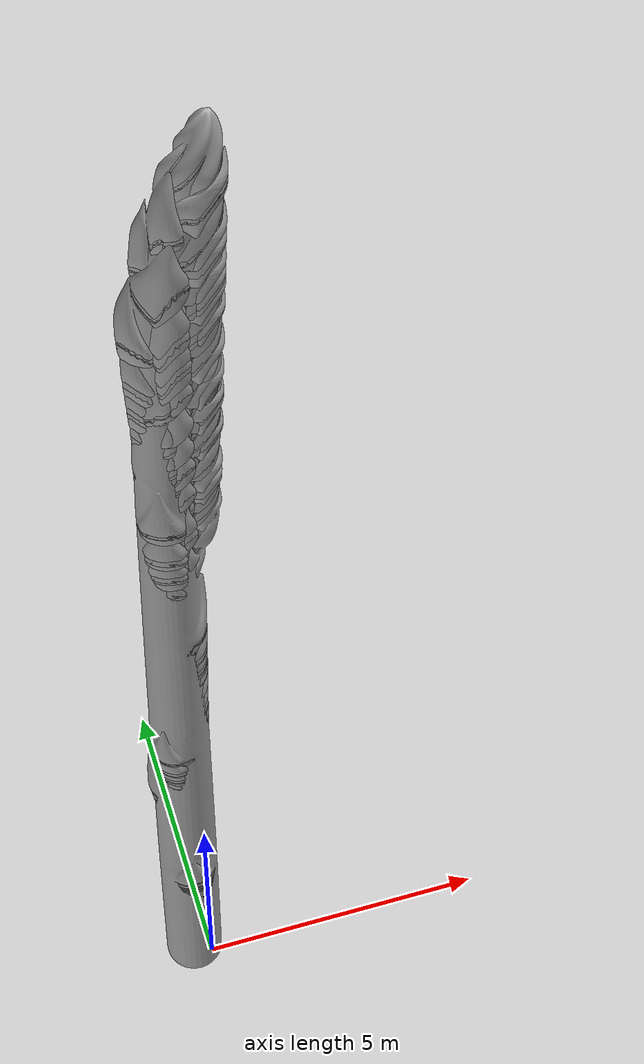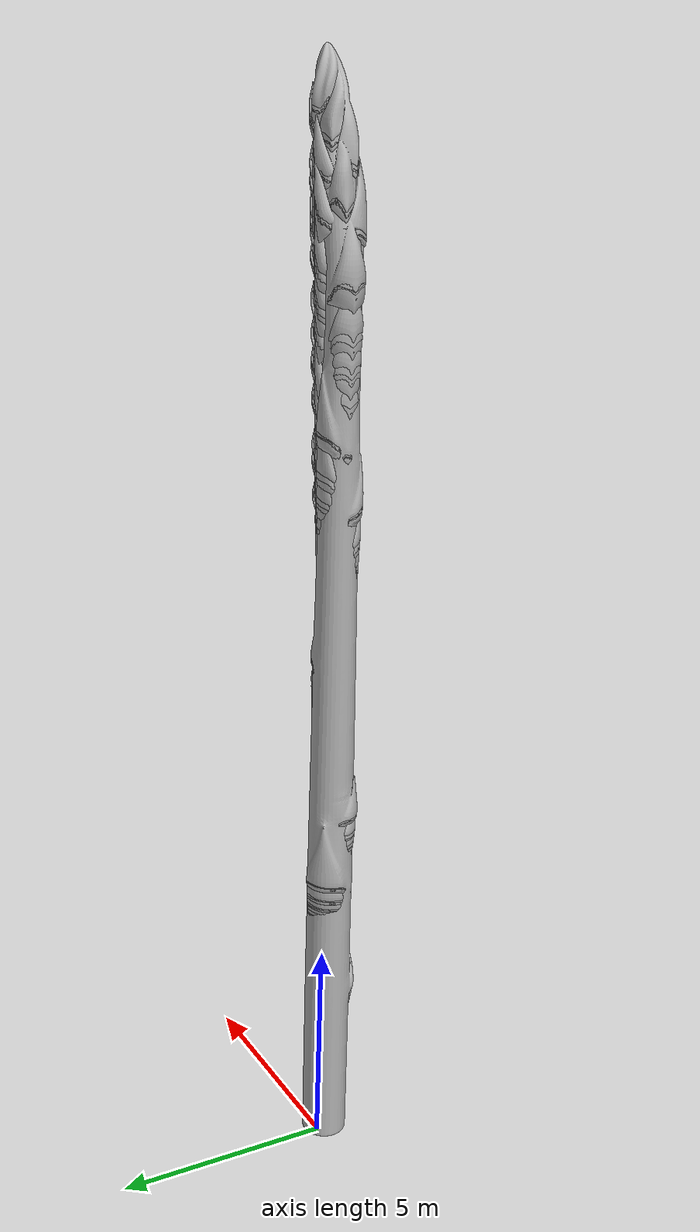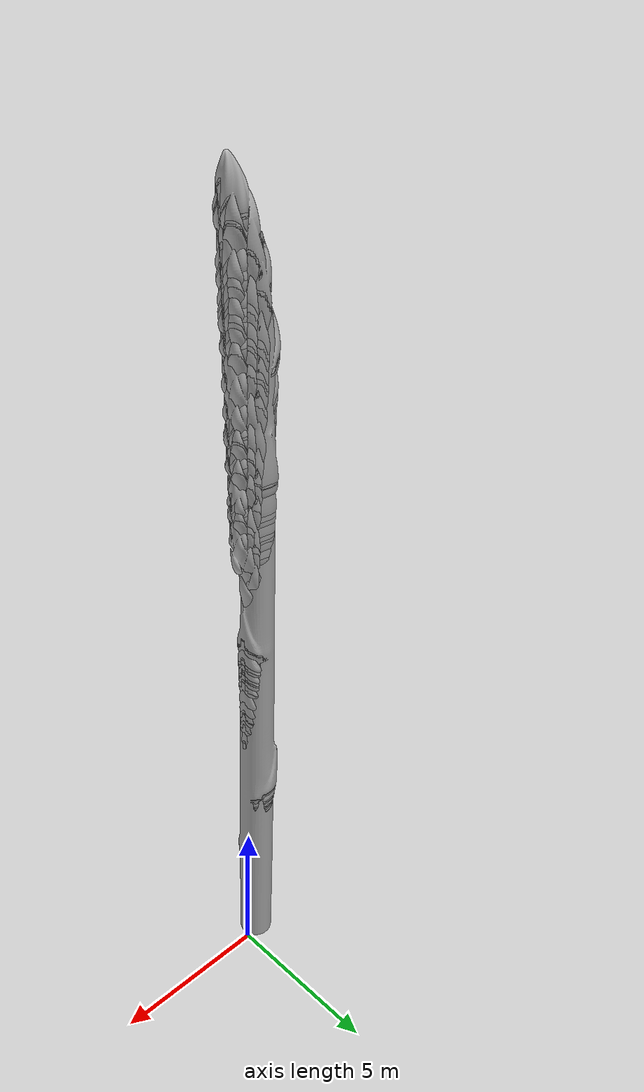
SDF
<sdf version="1.6">
 <world name="default">
  <model name="asparagus_75">
   <static>1</static>
   <link name="asparagus_75">
    <visual name="visual">
     <geometry>
      <mesh>
       <uri>home/adeeb/asparagus_ws/src/models/Asparagus/meshes/asparagus.obj</uri>
       <scale>1.08739 1.08739 1.08739</scale>
      </mesh>
     </geometry>
    </visual>
    <collision name="collision">
     <geometry>
      <mesh>
       <uri>home/adeeb/asparagus_ws/src/models/Asparagus/meshes/asparagus.obj</uri>
       <scale>1.08739 1.08739 1.08739</scale>
      </mesh>
     </geometry>
    </collision>
   </link>
  </model>
  <model name="asparagus_76">
   <static>1</static>
   <link name="asparagus_76">
    <visual name="visual">
     <geometry>
      <mesh>
       <uri>home/adeeb/asparagus_ws/src/models/Asparagus/meshes/asparagus.obj</uri>
       <scale>0.906814 0.906814 0.906814</scale>
      </mesh>
     </geometry>
    </visual>
    <collision name="collision">
     <geometry>
      <mesh>
       <uri>home/adeeb/asparagus_ws/src/models/Asparagus/meshes/asparagus.obj</uri>
       <scale>0.906814 0.906814 0.906814</scale>
      </mesh>
     </geometry>
    </collision>
   </link>
  </model>
  <model name="asparagus_77">
   <static>1</static>
   <link name="asparagus_77">
    <visual name="visual">
     <geometry>
      <mesh>
       <uri>home/adeeb/asparagus_ws/src/models/Asparagus/meshes/asparagus.obj</uri>
       <scale>0.9052 0.9052 0.9052</scale>
      </mesh>
     </geometry>
    </visual>
    <collision name="collision">
     <geometry>
      <mesh>
       <uri>home/adeeb/asparagus_ws/src/models/Asparagus/meshes/asparagus.obj</uri>
       <scale>0.9052 0.9052 0.9052</scale>
      </mesh>
     </geometry>
    </collision>
   </link>
  </model>
  <model name="asparagus_78">
   <static>1</static>
   <link name="asparagus_78">
    <visual name="visual">
     <geometry>
      <mesh>
       <uri>home/adeeb/asparagus_ws/src/models/Asparagus/meshes/asparagus.obj</uri>
       <scale>1.18545 1.18545 1.18545</scale>
      </mesh>
     </geometry>
    </visual>
    <collision name="collision">
     <geometry>
      <mesh>
       <uri>home/adeeb/asparagus_ws/src/models/Asparagus/meshes/asparagus.obj</uri>
       <scale>1.18545 1.18545 1.18545</scale>
      </mesh>
     </geometry>
    </collision>
   </link>
  </model>
  <model name="asparagus_79">
   <static>1</static>
   <link name="asparagus_79">
    <visual name="visual">
     <geometry>
      <mesh>
       <uri>home/adeeb/asparagus_ws/src/models/Asparagus/meshes/asparagus.obj</uri>
       <scale>1.08357 1.08357 1.08357</scale>
      </mesh>
     </geometry>
    </visual>
    <collision name="collision">
     <geometry>
      <mesh>
       <uri>home/adeeb/asparagus_ws/src/models/Asparagus/meshes/asparagus.obj</uri>
       <scale>1.08357 1.08357 1.08357</scale>
      </mesh>
     </geometry>
    </collision>
   </link>
  </model>
  <model name="asparagus_80">
   <static>1</static>
   <link name="asparagus_80">
    <visual name="visual">
     <geometry>
      <mesh>
       <uri>home/adeeb/asparagus_ws/src/models/Asparagus/meshes/asparagus.obj</uri>
       <scale>1.18216 1.18216 1.18216</scale>
      </mesh>
     </geometry>
    </visual>
    <collision name="collision">
     <geometry>
      <mesh>
       <uri>home/adeeb/asparagus_ws/src/models/Asparagus/meshes/asparagus.obj</uri>
       <scale>1.18216 1.18216 1.18216</scale>
      </mesh>
     </geometry>
    </collision>
   </link>
  </model>
  <model name="asparagus_81">
   <static>1</static>
   <link name="asparagus_81">
    <visual name="visual">
     <geometry>
      <mesh>
       <uri>home/adeeb/asparagus_ws/src/models/Asparagus/meshes/asparagus.obj</uri>
       <scale>1.10048 1.10048 1.10048</scale>
      </mesh>
     </geometry>
    </visual>
    <collision name="collision">
     <geometry>
      <mesh>
       <uri>home/adeeb/asparagus_ws/src/models/Asparagus/meshes/asparagus.obj</uri>
       <scale>1.10048 1.10048 1.10048</scale>
      </mesh>
     </geometry>
    </collision>
   </link>
  </model>
  <model name="asparagus_82">
   <static>1</static>
   <link name="asparagus_82">
    <visual name="visual">
     <geometry>
      <mesh>
       <uri>home/adeeb/asparagus_ws/src/models/Asparagus/meshes/asparagus.obj</uri>
       <scale>0.838576 0.838576 0.838576</scale>
      </mesh>
     </geometry>
    </visual>
    <collision name="collision">
     <geometry>
      <mesh>
       <uri>home/adeeb/asparagus_ws/src/models/Asparagus/meshes/asparagus.obj</uri>
       <scale>0.838576 0.838576 0.838576</scale>
      </mesh>
     </geometry>
    </collision>
   </link>
  </model>
  <model name="asparagus_83">
   <static>1</static>
   <link name="asparagus_83">
    <visual name="visual">
     <geometry>
      <mesh>
       <uri>home/adeeb/asparagus_ws/src/models/Asparagus/meshes/asparagus.obj</uri>
       <scale>1.19256 1.19256 1.19256</scale>
      </mesh>
     </geometry>
    </visual>
    <collision name="collision">
     <geometry>
      <mesh>
       <uri>home/adeeb/asparagus_ws/src/models/Asparagus/meshes/asparagus.obj</uri>
       <scale>1.19256 1.19256 1.19256</scale>
      </mesh>
     </geometry>
    </collision>
   </link>
  </model>
  <model name="asparagus_84">
   <static>1</static>
   <link name="asparagus_84">
    <visual name="visual">
     <geometry>
      <mesh>
       <uri>home/adeeb/asparagus_ws/src/models/Asparagus/meshes/asparagus.obj</uri>
       <scale>1.05072 1.05072 1.05072</scale>
      </mesh>
     </geometry>
    </visual>
    <collision name="collision">
     <geometry>
      <mesh>
       <uri>home/adeeb/asparagus_ws/src/models/Asparagus/meshes/asparagus.obj</uri>
       <scale>1.05072 1.05072 1.05072</scale>
      </mesh>
     </geometry>
    </collision>
   </link>
  </model>
  <model name="asparagus_85">
   <static>1</static>
   <link name="asparagus_85">
    <visual name="visual">
     <geometry>
      <mesh>
       <uri>home/adeeb/asparagus_ws/src/models/Asparagus/meshes/asparagus.obj</uri>
       <scale>1.07481 1.07481 1.07481</scale>
      </mesh>
     </geometry>
    </visual>
    <collision name="collision">
     <geometry>
      <mesh>
       <uri>home/adeeb/asparagus_ws/src/models/Asparagus/meshes/asparagus.obj</uri>
       <scale>1.07481 1.07481 1.07481</scale>
      </mesh>
     </geometry>
    </collision>
   </link>
  </model>
  <model name="asparagus_86">
   <static>1</static>
   <link name="asparagus_86">
    <visual name="visual">
     <geometry>
      <mesh>
       <uri>home/adeeb/asparagus_ws/src/models/Asparagus/meshes/asparagus.obj</uri>
       <scale>1.12419 1.12419 1.12419</scale>
      </mesh>
     </geometry>
    </visual>
    <collision name="collision">
     <geometry>
      <mesh>
       <uri>home/adeeb/asparagus_ws/src/models/Asparagus/meshes/asparagus.obj</uri>
       <scale>1.12419 1.12419 1.12419</scale>
      </mesh>
     </geometry>
    </collision>
   </link>
  </model>
  <model name="asparagus_87">
   <static>1</static>
   <link name="asparagus_87">
    <visual name="visual">
     <geometry>
      <mesh>
       <uri>home/adeeb/asparagus_ws/src/models/Asparagus/meshes/asparagus.obj</uri>
       <scale>1.04959 1.04959 1.04959</scale>
      </mesh>
     </geometry>
    </visual>
    <collision name="collision">
     <geometry>
      <mesh>
       <uri>home/adeeb/asparagus_ws/src/models/Asparagus/meshes/asparagus.obj</uri>
       <scale>1.04959 1.04959 1.04959</scale>
      </mesh>
     </geometry>
    </collision>
   </link>
  </model>
  <model name="asparagus_88">
   <static>1</static>
   <link name="asparagus_88">
    <visual name="visual">
     <geometry>
      <mesh>
       <uri>home/adeeb/asparagus_ws/src/models/Asparagus/meshes/asparagus.obj</uri>
       <scale>0.945422 0.945422 0.945422</scale>
      </mesh>
     </geometry>
    </visual>
    <collision name="collision">
     <geometry>
      <mesh>
       <uri>home/adeeb/asparagus_ws/src/models/Asparagus/meshes/asparagus.obj</uri>
       <scale>0.945422 0.945422 0.945422</scale>
      </mesh>
     </geometry>
    </collision>
   </link>
  </model>
  <model name="asparagus_89">
   <static>1</static>
   <link name="asparagus_89">
    <visual name="visual">
     <geometry>
      <mesh>
       <uri>home/adeeb/asparagus_ws/src/models/Asparagus/meshes/asparagus.obj</uri>
       <scale>1.00682 1.00682 1.00682</scale>
      </mesh>
     </geometry>
    </visual>
    <collision name="collision">
     <geometry>
      <mesh>
       <uri>home/adeeb/asparagus_ws/src/models/Asparagus/meshes/asparagus.obj</uri>
       <scale>1.00682 1.00682 1.00682</scale>
      </mesh>
     </geometry>
    </collision>
   </link>
  </model>
  <model name="asparagus_90">
   <static>1</static>
   <link name="asparagus_90">
    <visual name="visual">
     <geometry>
      <mesh>
       <uri>home/adeeb/asparagus_ws/src/models/Asparagus/meshes/asparagus.obj</uri>
       <scale>1.13965 1.13965 1.13965</scale>
      </mesh>
     </geometry>
    </visual>
    <collision name="collision">
     <geometry>
      <mesh>
       <uri>home/adeeb/asparagus_ws/src/models/Asparagus/meshes/asparagus.obj</uri>
       <scale>1.13965 1.13965 1.13965</scale>
      </mesh>
     </geometry>
    </collision>
   </link>
  </model>
  <model name="asparagus_91">
   <static>1</static>
   <link name="asparagus_91">
    <visual name="visual">
     <geometry>
      <mesh>
       <uri>home/adeeb/asparagus_ws/src/models/Asparagus/meshes/asparagus.obj</uri>
       <scale>1.18534 1.18534 1.18534</scale>
      </mesh>
     </geometry>
    </visual>
    <collision name="collision">
     <geometry>
      <mesh>
       <uri>home/adeeb/asparagus_ws/src/models/Asparagus/meshes/asparagus.obj</uri>
       <scale>1.18534 1.18534 1.18534</scale>
      </mesh>
     </geometry>
    </collision>
   </link>
  </model>
  <model name="asparagus_92">
   <static>1</static>
   <link name="asparagus_92">
    <visual name="visual">
     <geometry>
      <mesh>
       <uri>home/adeeb/asparagus_ws/src/models/Asparagus/meshes/asparagus.obj</uri>
       <scale>1.12181 1.12181 1.12181</scale>
      </mesh>
     </geometry>
    </visual>
    <collision name="collision">
     <geometry>
      <mesh>
       <uri>home/adeeb/asparagus_ws/src/models/Asparagus/meshes/asparagus.obj</uri>
       <scale>1.12181 1.12181 1.12181</scale>
      </mesh>
     </geometry>
    </collision>
   </link>
  </model>
  <model name="asparagus_93">
   <static>1</static>
   <link name="asparagus_93">
    <visual name="visual">
     <geometry>
      <mesh>
       <uri>home/adeeb/asparagus_ws/src/models/Asparagus/meshes/asparagus.obj</uri>
       <scale>0.802854 0.802854 0.802854</scale>
      </mesh>
     </geometry>
    </visual>
    <collision name="collision">
     <geometry>
      <mesh>
       <uri>home/adeeb/asparagus_ws/src/models/Asparagus/meshes/asparagus.obj</uri>
       <scale>0.802854 0.802854 0.802854</scale>
      </mesh>
     </geometry>
    </collision>
   </link>
  </model>
  <model name="asparagus_94">
   <static>1</static>
   <link name="asparagus_94">
    <visual name="visual">
     <geometry>
      <mesh>
       <uri>home/adeeb/asparagus_ws/src/models/Asparagus/meshes/asparagus.obj</uri>
       <scale>0.857711 0.857711 0.857711</scale>
      </mesh>
     </geometry>
    </visual>
    <collision name="collision">
     <geometry>
      <mesh>
       <uri>home/adeeb/asparagus_ws/src/models/Asparagus/meshes/asparagus.obj</uri>
       <scale>0.857711 0.857711 0.857711</scale>
      </mesh>
     </geometry>
    </collision>
   </link>
  </model>
  <model name="asparagus_95">
   <static>1</static>
   <link name="asparagus_95">
    <visual name="visual">
     <geometry>
      <mesh>
       <uri>home/adeeb/asparagus_ws/src/models/Asparagus/meshes/asparagus.obj</uri>
       <scale>0.946233 0.946233 0.946233</scale>
      </mesh>
     </geometry>
    </visual>
    <collision name="collision">
     <geometry>
      <mesh>
       <uri>home/adeeb/asparagus_ws/src/models/Asparagus/meshes/asparagus.obj</uri>
       <scale>0.946233 0.946233 0.946233</scale>
      </mesh>
     </geometry>
    </collision>
   </link>
  </model>
  <model name="asparagus_96">
   <static>1</static>
   <link name="asparagus_96">
    <visual name="visual">
     <geometry>
      <mesh>
       <uri>home/adeeb/asparagus_ws/src/models/Asparagus/meshes/asparagus.obj</uri>
       <scale>0.973038 0.973038 0.973038</scale>
      </mesh>
     </geometry>
    </visual>
    <collision name="collision">
     <geometry>
      <mesh>
       <uri>home/adeeb/asparagus_ws/src/models/Asparagus/meshes/asparagus.obj</uri>
       <scale>0.973038 0.973038 0.973038</scale>
      </mesh>
     </geometry>
    </collision>
   </link>
  </model>
  <model name="asparagus_97">
   <static>1</static>
   <link name="asparagus_97">
    <visual name="visual">
     <geometry>
      <mesh>
       <uri>home/adeeb/asparagus_ws/src/models/Asparagus/meshes/asparagus.obj</uri>
       <scale>0.939274 0.939274 0.939274</scale>
      </mesh>
     </geometry>
    </visual>
    <collision name="collision">
     <geometry>
      <mesh>
       <uri>home/adeeb/asparagus_ws/src/models/Asparagus/meshes/asparagus.obj</uri>
       <scale>0.939274 0.939274 0.939274</scale>
      </mesh>
     </geometry>
    </collision>
   </link>
  </model>
  <model name="asparagus_98">
   <static>1</static>
   <link name="asparagus_98">
    <visual name="visual">
     <geometry>
      <mesh>
       <uri>home/adeeb/asparagus_ws/src/models/Asparagus/meshes/asparagus.obj</uri>
       <scale>1.18501 1.18501 1.18501</scale>
      </mesh>
     </geometry>
    </visual>
    <collision name="collision">
     <geometry>
      <mesh>
       <uri>home/adeeb/asparagus_ws/src/models/Asparagus/meshes/asparagus.obj</uri>
       <scale>1.18501 1.18501 1.18501</scale>
      </mesh>
     </geometry>
    </collision>
   </link>
  </model>
  <model name="asparagus_99">
   <static>1</static>
   <link name="asparagus_99">
    <visual name="visual">
     <geometry>
      <mesh>
       <uri>home/adeeb/asparagus_ws/src/models/Asparagus/meshes/asparagus.obj</uri>
       <scale>0.843078 0.843078 0.843078</scale>
      </mesh>
     </geometry>
    </visual>
    <collision name="collision">
     <geometry>
      <mesh>
       <uri>home/adeeb/asparagus_ws/src/models/Asparagus/meshes/asparagus.obj</uri>
       <scale>0.843078 0.843078 0.843078</scale>
      </mesh>
     </geometry>
    </collision>
   </link>
  </model>
 </world>
</sdf>
